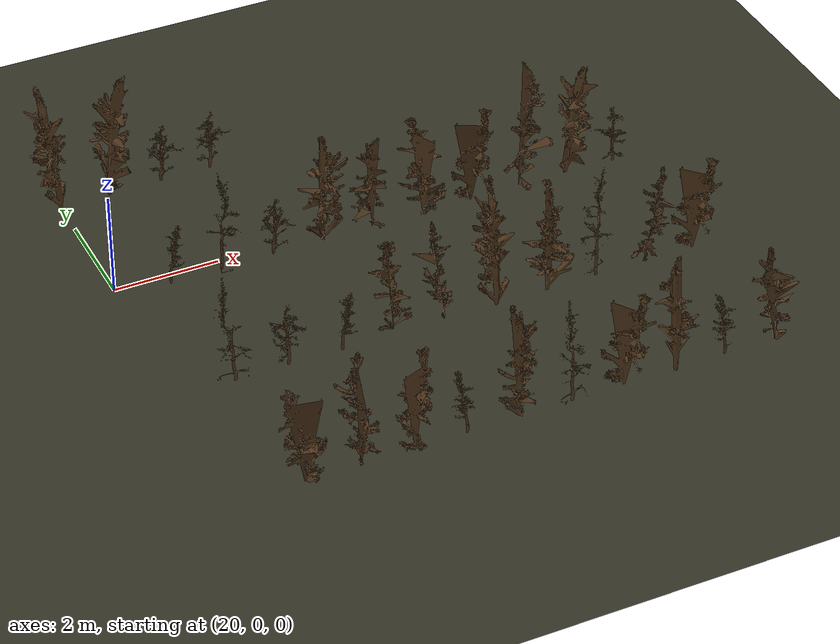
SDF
<sdf version="1.9">
 <world name="orchard_dormant_world">
  <model name="ground_plane">
   <static>true</static>
   <link name="link">
    <collision name="collision">
     <geometry><plane><normal>0 0 1</normal><size>500 500</size></plane></geometry>
    </collision>
    <visual name="visual">
     <geometry><plane><normal>0 0 1</normal><size>500 500</size></plane></geometry>
     <material><ambient>0.2 0.2 0.15 1</ambient><diffuse>0.2 0.2 0.15 1</diffuse></material>
    </visual>
   </link>
  </model>
  <model name="tree246">
   <static>true</static>
   <pose>23.000 2.800 -0.1 0 0 5.252</pose>
   <link name="link">
    <collision name="collision">
     <geometry>
      <mesh>
       <uri>file:///home/administrator/ros2/orchard_navigation_rl_ws/src/orchard_worlds/models/orchard_model/tree14_collision.stl</uri>
      </mesh>
     </geometry>
    </collision>
    <visual name="visual">
     <geometry>
      <mesh>
       <uri>file:///home/administrator/ros2/orchard_navigation_rl_ws/src/orchard_worlds/models/orchard_model/tree14.stl</uri>
      </mesh>
     </geometry>
     <material><ambient>0.3 0.2 0.1 1</ambient><diffuse>0.3 0.2 0.1 1</diffuse></material>
    </visual>
   </link>
  </model>
  <model name="tree247">
   <static>true</static>
   <pose>22.000 2.800 -0.1 0 0 4.802</pose>
   <link name="link">
    <collision name="collision">
     <geometry>
      <mesh>
       <uri>file:///home/administrator/ros2/orchard_navigation_rl_ws/src/orchard_worlds/models/orchard_model/tree14_collision.stl</uri>
      </mesh>
     </geometry>
    </collision>
    <visual name="visual">
     <geometry>
      <mesh>
       <uri>file:///home/administrator/ros2/orchard_navigation_rl_ws/src/orchard_worlds/models/orchard_model/tree14.stl</uri>
      </mesh>
     </geometry>
     <material><ambient>0.3 0.2 0.1 1</ambient><diffuse>0.3 0.2 0.1 1</diffuse></material>
    </visual>
   </link>
  </model>
  <model name="tree248">
   <static>true</static>
   <pose>21.000 2.800 -0.1 0 0 2.596</pose>
   <link name="link">
    <collision name="collision">
     <geometry>
      <mesh>
       <uri>file:///home/administrator/ros2/orchard_navigation_rl_ws/src/orchard_worlds/models/orchard_model/tree7_collision.stl</uri>
      </mesh>
     </geometry>
    </collision>
    <visual name="visual">
     <geometry>
      <mesh>
       <uri>file:///home/administrator/ros2/orchard_navigation_rl_ws/src/orchard_worlds/models/orchard_model/tree7.stl</uri>
      </mesh>
     </geometry>
     <material><ambient>0.3 0.2 0.1 1</ambient><diffuse>0.3 0.2 0.1 1</diffuse></material>
    </visual>
   </link>
  </model>
  <model name="tree249">
   <static>true</static>
   <pose>20.000 2.800 -0.1 0 0 4.828</pose>
   <link name="link">
    <collision name="collision">
     <geometry>
      <mesh>
       <uri>file:///home/administrator/ros2/orchard_navigation_rl_ws/src/orchard_worlds/models/orchard_model/tree7_collision.stl</uri>
      </mesh>
     </geometry>
    </collision>
    <visual name="visual">
     <geometry>
      <mesh>
       <uri>file:///home/administrator/ros2/orchard_navigation_rl_ws/src/orchard_worlds/models/orchard_model/tree7.stl</uri>
      </mesh>
     </geometry>
     <material><ambient>0.3 0.2 0.1 1</ambient><diffuse>0.3 0.2 0.1 1</diffuse></material>
    </visual>
   </link>
  </model>
  <model name="tree267">
   <static>true</static>
   <pose>30.000 -0.200 -0.1 0 0 1.814</pose>
   <link name="link">
    <collision name="collision">
     <geometry>
      <mesh>
       <uri>file:///home/administrator/ros2/orchard_navigation_rl_ws/src/orchard_worlds/models/orchard_model/tree14_collision.stl</uri>
      </mesh>
     </geometry>
    </collision>
    <visual name="visual">
     <geometry>
      <mesh>
       <uri>file:///home/administrator/ros2/orchard_navigation_rl_ws/src/orchard_worlds/models/orchard_model/tree14.stl</uri>
      </mesh>
     </geometry>
     <material><ambient>0.3 0.2 0.1 1</ambient><diffuse>0.3 0.2 0.1 1</diffuse></material>
    </visual>
   </link>
  </model>
  <model name="tree268">
   <static>true</static>
   <pose>29.000 -0.200 -0.1 0 0 1.532</pose>
   <link name="link">
    <collision name="collision">
     <geometry>
      <mesh>
       <uri>file:///home/administrator/ros2/orchard_navigation_rl_ws/src/orchard_worlds/models/orchard_model/tree7_collision.stl</uri>
      </mesh>
     </geometry>
    </collision>
    <visual name="visual">
     <geometry>
      <mesh>
       <uri>file:///home/administrator/ros2/orchard_navigation_rl_ws/src/orchard_worlds/models/orchard_model/tree7.stl</uri>
      </mesh>
     </geometry>
     <material><ambient>0.3 0.2 0.1 1</ambient><diffuse>0.3 0.2 0.1 1</diffuse></material>
    </visual>
   </link>
  </model>
  <model name="tree269">
   <static>true</static>
   <pose>28.000 -0.200 -0.1 0 0 1.834</pose>
   <link name="link">
    <collision name="collision">
     <geometry>
      <mesh>
       <uri>file:///home/administrator/ros2/orchard_navigation_rl_ws/src/orchard_worlds/models/orchard_model/tree3_collision.stl</uri>
      </mesh>
     </geometry>
    </collision>
    <visual name="visual">
     <geometry>
      <mesh>
       <uri>file:///home/administrator/ros2/orchard_navigation_rl_ws/src/orchard_worlds/models/orchard_model/tree3.stl</uri>
      </mesh>
     </geometry>
     <material><ambient>0.3 0.2 0.1 1</ambient><diffuse>0.3 0.2 0.1 1</diffuse></material>
    </visual>
   </link>
  </model>
  <model name="tree270">
   <static>true</static>
   <pose>27.000 -0.200 -0.1 0 0 2.376</pose>
   <link name="link">
    <collision name="collision">
     <geometry>
      <mesh>
       <uri>file:///home/administrator/ros2/orchard_navigation_rl_ws/src/orchard_worlds/models/orchard_model/tree11_collision.stl</uri>
      </mesh>
     </geometry>
    </collision>
    <visual name="visual">
     <geometry>
      <mesh>
       <uri>file:///home/administrator/ros2/orchard_navigation_rl_ws/src/orchard_worlds/models/orchard_model/tree11.stl</uri>
      </mesh>
     </geometry>
     <material><ambient>0.3 0.2 0.1 1</ambient><diffuse>0.3 0.2 0.1 1</diffuse></material>
    </visual>
   </link>
  </model>
  <model name="tree271">
   <static>true</static>
   <pose>26.000 -0.200 -0.1 0 0 4.576</pose>
   <link name="link">
    <collision name="collision">
     <geometry>
      <mesh>
       <uri>file:///home/administrator/ros2/orchard_navigation_rl_ws/src/orchard_worlds/models/orchard_model/tree11_collision.stl</uri>
      </mesh>
     </geometry>
    </collision>
    <visual name="visual">
     <geometry>
      <mesh>
       <uri>file:///home/administrator/ros2/orchard_navigation_rl_ws/src/orchard_worlds/models/orchard_model/tree11.stl</uri>
      </mesh>
     </geometry>
     <material><ambient>0.3 0.2 0.1 1</ambient><diffuse>0.3 0.2 0.1 1</diffuse></material>
    </visual>
   </link>
  </model>
  <model name="tree272">
   <static>true</static>
   <pose>25.000 -0.200 -0.1 0 0 6.066</pose>
   <link name="link">
    <collision name="collision">
     <geometry>
      <mesh>
       <uri>file:///home/administrator/ros2/orchard_navigation_rl_ws/src/orchard_worlds/models/orchard_model/tree1_collision.stl</uri>
      </mesh>
     </geometry>
    </collision>
    <visual name="visual">
     <geometry>
      <mesh>
       <uri>file:///home/administrator/ros2/orchard_navigation_rl_ws/src/orchard_worlds/models/orchard_model/tree1.stl</uri>
      </mesh>
     </geometry>
     <material><ambient>0.3 0.2 0.1 1</ambient><diffuse>0.3 0.2 0.1 1</diffuse></material>
    </visual>
   </link>
  </model>
  <model name="tree273">
   <static>true</static>
   <pose>24.000 -0.200 -0.1 0 0 0.676</pose>
   <link name="link">
    <collision name="collision">
     <geometry>
      <mesh>
       <uri>file:///home/administrator/ros2/orchard_navigation_rl_ws/src/orchard_worlds/models/orchard_model/tree7_collision.stl</uri>
      </mesh>
     </geometry>
    </collision>
    <visual name="visual">
     <geometry>
      <mesh>
       <uri>file:///home/administrator/ros2/orchard_navigation_rl_ws/src/orchard_worlds/models/orchard_model/tree7.stl</uri>
      </mesh>
     </geometry>
     <material><ambient>0.3 0.2 0.1 1</ambient><diffuse>0.3 0.2 0.1 1</diffuse></material>
    </visual>
   </link>
  </model>
  <model name="tree274">
   <static>true</static>
   <pose>23.000 -0.200 -0.1 0 0 4.599</pose>
   <link name="link">
    <collision name="collision">
     <geometry>
      <mesh>
       <uri>file:///home/administrator/ros2/orchard_navigation_rl_ws/src/orchard_worlds/models/orchard_model/tree14_collision.stl</uri>
      </mesh>
     </geometry>
    </collision>
    <visual name="visual">
     <geometry>
      <mesh>
       <uri>file:///home/administrator/ros2/orchard_navigation_rl_ws/src/orchard_worlds/models/orchard_model/tree14.stl</uri>
      </mesh>
     </geometry>
     <material><ambient>0.3 0.2 0.1 1</ambient><diffuse>0.3 0.2 0.1 1</diffuse></material>
    </visual>
   </link>
  </model>
  <model name="tree275">
   <static>true</static>
   <pose>22.000 -0.200 -0.1 0 0 0.384</pose>
   <link name="link">
    <collision name="collision">
     <geometry>
      <mesh>
       <uri>file:///home/administrator/ros2/orchard_navigation_rl_ws/src/orchard_worlds/models/orchard_model/tree9_collision.stl</uri>
      </mesh>
     </geometry>
    </collision>
    <visual name="visual">
     <geometry>
      <mesh>
       <uri>file:///home/administrator/ros2/orchard_navigation_rl_ws/src/orchard_worlds/models/orchard_model/tree9.stl</uri>
      </mesh>
     </geometry>
     <material><ambient>0.3 0.2 0.1 1</ambient><diffuse>0.3 0.2 0.1 1</diffuse></material>
    </visual>
   </link>
  </model>
  <model name="tree276">
   <static>true</static>
   <pose>21.000 -0.200 -0.1 0 0 2.003</pose>
   <link name="link">
    <collision name="collision">
     <geometry>
      <mesh>
       <uri>file:///home/administrator/ros2/orchard_navigation_rl_ws/src/orchard_worlds/models/orchard_model/tree4_collision.stl</uri>
      </mesh>
     </geometry>
    </collision>
    <visual name="visual">
     <geometry>
      <mesh>
       <uri>file:///home/administrator/ros2/orchard_navigation_rl_ws/src/orchard_worlds/models/orchard_model/tree4.stl</uri>
      </mesh>
     </geometry>
     <material><ambient>0.3 0.2 0.1 1</ambient><diffuse>0.3 0.2 0.1 1</diffuse></material>
    </visual>
   </link>
  </model>
  <model name="tree295">
   <static>true</static>
   <pose>30.000 -3.250 -0.1 0 0 2.032</pose>
   <link name="link">
    <collision name="collision">
     <geometry>
      <mesh>
       <uri>file:///home/administrator/ros2/orchard_navigation_rl_ws/src/orchard_worlds/models/orchard_model/tree11_collision.stl</uri>
      </mesh>
     </geometry>
    </collision>
    <visual name="visual">
     <geometry>
      <mesh>
       <uri>file:///home/administrator/ros2/orchard_navigation_rl_ws/src/orchard_worlds/models/orchard_model/tree11.stl</uri>
      </mesh>
     </geometry>
     <material><ambient>0.3 0.2 0.1 1</ambient><diffuse>0.3 0.2 0.1 1</diffuse></material>
    </visual>
   </link>
  </model>
  <model name="tree296">
   <static>true</static>
   <pose>29.000 -3.250 -0.1 0 0 1.495</pose>
   <link name="link">
    <collision name="collision">
     <geometry>
      <mesh>
       <uri>file:///home/administrator/ros2/orchard_navigation_rl_ws/src/orchard_worlds/models/orchard_model/tree2_collision.stl</uri>
      </mesh>
     </geometry>
    </collision>
    <visual name="visual">
     <geometry>
      <mesh>
       <uri>file:///home/administrator/ros2/orchard_navigation_rl_ws/src/orchard_worlds/models/orchard_model/tree2.stl</uri>
      </mesh>
     </geometry>
     <material><ambient>0.3 0.2 0.1 1</ambient><diffuse>0.3 0.2 0.1 1</diffuse></material>
    </visual>
   </link>
  </model>
  <model name="tree297">
   <static>true</static>
   <pose>28.000 -3.250 -0.1 0 0 2.977</pose>
   <link name="link">
    <collision name="collision">
     <geometry>
      <mesh>
       <uri>file:///home/administrator/ros2/orchard_navigation_rl_ws/src/orchard_worlds/models/orchard_model/tree9_collision.stl</uri>
      </mesh>
     </geometry>
    </collision>
    <visual name="visual">
     <geometry>
      <mesh>
       <uri>file:///home/administrator/ros2/orchard_navigation_rl_ws/src/orchard_worlds/models/orchard_model/tree9.stl</uri>
      </mesh>
     </geometry>
     <material><ambient>0.3 0.2 0.1 1</ambient><diffuse>0.3 0.2 0.1 1</diffuse></material>
    </visual>
   </link>
  </model>
  <model name="tree298">
   <static>true</static>
   <pose>27.000 -3.250 -0.1 0 0 3.870</pose>
   <link name="link">
    <collision name="collision">
     <geometry>
      <mesh>
       <uri>file:///home/administrator/ros2/orchard_navigation_rl_ws/src/orchard_worlds/models/orchard_model/tree12_collision.stl</uri>
      </mesh>
     </geometry>
    </collision>
    <visual name="visual">
     <geometry>
      <mesh>
       <uri>file:///home/administrator/ros2/orchard_navigation_rl_ws/src/orchard_worlds/models/orchard_model/tree12.stl</uri>
      </mesh>
     </geometry>
     <material><ambient>0.3 0.2 0.1 1</ambient><diffuse>0.3 0.2 0.1 1</diffuse></material>
    </visual>
   </link>
  </model>
  <model name="tree299">
   <static>true</static>
   <pose>26.000 -3.250 -0.1 0 0 4.251</pose>
   <link name="link">
    <collision name="collision">
     <geometry>
      <mesh>
       <uri>file:///home/administrator/ros2/orchard_navigation_rl_ws/src/orchard_worlds/models/orchard_model/tree7_collision.stl</uri>
      </mesh>
     </geometry>
    </collision>
    <visual name="visual">
     <geometry>
      <mesh>
       <uri>file:///home/administrator/ros2/orchard_navigation_rl_ws/src/orchard_worlds/models/orchard_model/tree7.stl</uri>
      </mesh>
     </geometry>
     <material><ambient>0.3 0.2 0.1 1</ambient><diffuse>0.3 0.2 0.1 1</diffuse></material>
    </visual>
   </link>
  </model>
  <model name="tree300">
   <static>true</static>
   <pose>25.000 -3.250 -0.1 0 0 5.047</pose>
   <link name="link">
    <collision name="collision">
     <geometry>
      <mesh>
       <uri>file:///home/administrator/ros2/orchard_navigation_rl_ws/src/orchard_worlds/models/orchard_model/tree2_collision.stl</uri>
      </mesh>
     </geometry>
    </collision>
    <visual name="visual">
     <geometry>
      <mesh>
       <uri>file:///home/administrator/ros2/orchard_navigation_rl_ws/src/orchard_worlds/models/orchard_model/tree2.stl</uri>
      </mesh>
     </geometry>
     <material><ambient>0.3 0.2 0.1 1</ambient><diffuse>0.3 0.2 0.1 1</diffuse></material>
    </visual>
   </link>
  </model>
  <model name="tree301">
   <static>true</static>
   <pose>24.000 -3.250 -0.1 0 0 4.027</pose>
   <link name="link">
    <collision name="collision">
     <geometry>
      <mesh>
       <uri>file:///home/administrator/ros2/orchard_navigation_rl_ws/src/orchard_worlds/models/orchard_model/tree1_collision.stl</uri>
      </mesh>
     </geometry>
    </collision>
    <visual name="visual">
     <geometry>
      <mesh>
       <uri>file:///home/administrator/ros2/orchard_navigation_rl_ws/src/orchard_worlds/models/orchard_model/tree1.stl</uri>
      </mesh>
     </geometry>
     <material><ambient>0.3 0.2 0.1 1</ambient><diffuse>0.3 0.2 0.1 1</diffuse></material>
    </visual>
   </link>
  </model>
  <model name="tree302">
   <static>true</static>
   <pose>23.000 -3.250 -0.1 0 0 1.759</pose>
   <link name="link">
    <collision name="collision">
     <geometry>
      <mesh>
       <uri>file:///home/administrator/ros2/orchard_navigation_rl_ws/src/orchard_worlds/models/orchard_model/tree4_collision.stl</uri>
      </mesh>
     </geometry>
    </collision>
    <visual name="visual">
     <geometry>
      <mesh>
       <uri>file:///home/administrator/ros2/orchard_navigation_rl_ws/src/orchard_worlds/models/orchard_model/tree4.stl</uri>
      </mesh>
     </geometry>
     <material><ambient>0.3 0.2 0.1 1</ambient><diffuse>0.3 0.2 0.1 1</diffuse></material>
    </visual>
   </link>
  </model>
  <model name="tree303">
   <static>true</static>
   <pose>22.000 -3.250 -0.1 0 0 6.168</pose>
   <link name="link">
    <collision name="collision">
     <geometry>
      <mesh>
       <uri>file:///home/administrator/ros2/orchard_navigation_rl_ws/src/orchard_worlds/models/orchard_model/tree14_collision.stl</uri>
      </mesh>
     </geometry>
    </collision>
    <visual name="visual">
     <geometry>
      <mesh>
       <uri>file:///home/administrator/ros2/orchard_navigation_rl_ws/src/orchard_worlds/models/orchard_model/tree14.stl</uri>
      </mesh>
     </geometry>
     <material><ambient>0.3 0.2 0.1 1</ambient><diffuse>0.3 0.2 0.1 1</diffuse></material>
    </visual>
   </link>
  </model>
  <model name="tree304">
   <static>true</static>
   <pose>21.000 -3.250 -0.1 0 0 5.284</pose>
   <link name="link">
    <collision name="collision">
     <geometry>
      <mesh>
       <uri>file:///home/administrator/ros2/orchard_navigation_rl_ws/src/orchard_worlds/models/orchard_model/tree9_collision.stl</uri>
      </mesh>
     </geometry>
    </collision>
    <visual name="visual">
     <geometry>
      <mesh>
       <uri>file:///home/administrator/ros2/orchard_navigation_rl_ws/src/orchard_worlds/models/orchard_model/tree9.stl</uri>
      </mesh>
     </geometry>
     <material><ambient>0.3 0.2 0.1 1</ambient><diffuse>0.3 0.2 0.1 1</diffuse></material>
    </visual>
   </link>
  </model>
  <model name="tree323">
   <static>true</static>
   <pose>30.000 -6.200 -0.1 0 0 5.204</pose>
   <link name="link">
    <collision name="collision">
     <geometry>
      <mesh>
       <uri>file:///home/administrator/ros2/orchard_navigation_rl_ws/src/orchard_worlds/models/orchard_model/tree8_collision.stl</uri>
      </mesh>
     </geometry>
    </collision>
    <visual name="visual">
     <geometry>
      <mesh>
       <uri>file:///home/administrator/ros2/orchard_navigation_rl_ws/src/orchard_worlds/models/orchard_model/tree8.stl</uri>
      </mesh>
     </geometry>
     <material><ambient>0.3 0.2 0.1 1</ambient><diffuse>0.3 0.2 0.1 1</diffuse></material>
    </visual>
   </link>
  </model>
  <model name="tree324">
   <static>true</static>
   <pose>29.000 -6.200 -0.1 0 0 5.861</pose>
   <link name="link">
    <collision name="collision">
     <geometry>
      <mesh>
       <uri>file:///home/administrator/ros2/orchard_navigation_rl_ws/src/orchard_worlds/models/orchard_model/tree4_collision.stl</uri>
      </mesh>
     </geometry>
    </collision>
    <visual name="visual">
     <geometry>
      <mesh>
       <uri>file:///home/administrator/ros2/orchard_navigation_rl_ws/src/orchard_worlds/models/orchard_model/tree4.stl</uri>
      </mesh>
     </geometry>
     <material><ambient>0.3 0.2 0.1 1</ambient><diffuse>0.3 0.2 0.1 1</diffuse></material>
    </visual>
   </link>
  </model>
  <model name="tree325">
   <static>true</static>
   <pose>28.000 -6.200 -0.1 0 0 4.565</pose>
   <link name="link">
    <collision name="collision">
     <geometry>
      <mesh>
       <uri>file:///home/administrator/ros2/orchard_navigation_rl_ws/src/orchard_worlds/models/orchard_model/tree15_collision.stl</uri>
      </mesh>
     </geometry>
    </collision>
    <visual name="visual">
     <geometry>
      <mesh>
       <uri>file:///home/administrator/ros2/orchard_navigation_rl_ws/src/orchard_worlds/models/orchard_model/tree15.stl</uri>
      </mesh>
     </geometry>
     <material><ambient>0.3 0.2 0.1 1</ambient><diffuse>0.3 0.2 0.1 1</diffuse></material>
    </visual>
   </link>
  </model>
  <model name="tree326">
   <static>true</static>
   <pose>27.000 -6.200 -0.1 0 0 1.863</pose>
   <link name="link">
    <collision name="collision">
     <geometry>
      <mesh>
       <uri>file:///home/administrator/ros2/orchard_navigation_rl_ws/src/orchard_worlds/models/orchard_model/tree11_collision.stl</uri>
      </mesh>
     </geometry>
    </collision>
    <visual name="visual">
     <geometry>
      <mesh>
       <uri>file:///home/administrator/ros2/orchard_navigation_rl_ws/src/orchard_worlds/models/orchard_model/tree11.stl</uri>
      </mesh>
     </geometry>
     <material><ambient>0.3 0.2 0.1 1</ambient><diffuse>0.3 0.2 0.1 1</diffuse></material>
    </visual>
   </link>
  </model>
  <model name="tree327">
   <static>true</static>
   <pose>26.000 -6.200 -0.1 0 0 5.737</pose>
   <link name="link">
    <collision name="collision">
     <geometry>
      <mesh>
       <uri>file:///home/administrator/ros2/orchard_navigation_rl_ws/src/orchard_worlds/models/orchard_model/tree9_collision.stl</uri>
      </mesh>
     </geometry>
    </collision>
    <visual name="visual">
     <geometry>
      <mesh>
       <uri>file:///home/administrator/ros2/orchard_navigation_rl_ws/src/orchard_worlds/models/orchard_model/tree9.stl</uri>
      </mesh>
     </geometry>
     <material><ambient>0.3 0.2 0.1 1</ambient><diffuse>0.3 0.2 0.1 1</diffuse></material>
    </visual>
   </link>
  </model>
  <model name="tree328">
   <static>true</static>
   <pose>25.000 -6.200 -0.1 0 0 5.600</pose>
   <link name="link">
    <collision name="collision">
     <geometry>
      <mesh>
       <uri>file:///home/administrator/ros2/orchard_navigation_rl_ws/src/orchard_worlds/models/orchard_model/tree5_collision.stl</uri>
      </mesh>
     </geometry>
    </collision>
    <visual name="visual">
     <geometry>
      <mesh>
       <uri>file:///home/administrator/ros2/orchard_navigation_rl_ws/src/orchard_worlds/models/orchard_model/tree5.stl</uri>
      </mesh>
     </geometry>
     <material><ambient>0.3 0.2 0.1 1</ambient><diffuse>0.3 0.2 0.1 1</diffuse></material>
    </visual>
   </link>
  </model>
  <model name="tree329">
   <static>true</static>
   <pose>24.000 -6.200 -0.1 0 0 5.613</pose>
   <link name="link">
    <collision name="collision">
     <geometry>
      <mesh>
       <uri>file:///home/administrator/ros2/orchard_navigation_rl_ws/src/orchard_worlds/models/orchard_model/tree4_collision.stl</uri>
      </mesh>
     </geometry>
    </collision>
    <visual name="visual">
     <geometry>
      <mesh>
       <uri>file:///home/administrator/ros2/orchard_navigation_rl_ws/src/orchard_worlds/models/orchard_model/tree4.stl</uri>
      </mesh>
     </geometry>
     <material><ambient>0.3 0.2 0.1 1</ambient><diffuse>0.3 0.2 0.1 1</diffuse></material>
    </visual>
   </link>
  </model>
  <model name="tree330">
   <static>true</static>
   <pose>23.000 -6.200 -0.1 0 0 3.143</pose>
   <link name="link">
    <collision name="collision">
     <geometry>
      <mesh>
       <uri>file:///home/administrator/ros2/orchard_navigation_rl_ws/src/orchard_worlds/models/orchard_model/tree11_collision.stl</uri>
      </mesh>
     </geometry>
    </collision>
    <visual name="visual">
     <geometry>
      <mesh>
       <uri>file:///home/administrator/ros2/orchard_navigation_rl_ws/src/orchard_worlds/models/orchard_model/tree11.stl</uri>
      </mesh>
     </geometry>
     <material><ambient>0.3 0.2 0.1 1</ambient><diffuse>0.3 0.2 0.1 1</diffuse></material>
    </visual>
   </link>
  </model>
  <model name="tree331">
   <static>true</static>
   <pose>22.000 -6.200 -0.1 0 0 3.794</pose>
   <link name="link">
    <collision name="collision">
     <geometry>
      <mesh>
       <uri>file:///home/administrator/ros2/orchard_navigation_rl_ws/src/orchard_worlds/models/orchard_model/tree10_collision.stl</uri>
      </mesh>
     </geometry>
    </collision>
    <visual name="visual">
     <geometry>
      <mesh>
       <uri>file:///home/administrator/ros2/orchard_navigation_rl_ws/src/orchard_worlds/models/orchard_model/tree10.stl</uri>
      </mesh>
     </geometry>
     <material><ambient>0.3 0.2 0.1 1</ambient><diffuse>0.3 0.2 0.1 1</diffuse></material>
    </visual>
   </link>
  </model>
  <model name="tree332">
   <static>true</static>
   <pose>21.000 -6.200 -0.1 0 0 5.497</pose>
   <link name="link">
    <collision name="collision">
     <geometry>
      <mesh>
       <uri>file:///home/administrator/ros2/orchard_navigation_rl_ws/src/orchard_worlds/models/orchard_model/tree11_collision.stl</uri>
      </mesh>
     </geometry>
    </collision>
    <visual name="visual">
     <geometry>
      <mesh>
       <uri>file:///home/administrator/ros2/orchard_navigation_rl_ws/src/orchard_worlds/models/orchard_model/tree11.stl</uri>
      </mesh>
     </geometry>
     <material><ambient>0.3 0.2 0.1 1</ambient><diffuse>0.3 0.2 0.1 1</diffuse></material>
    </visual>
   </link>
  </model>
 </world>
</sdf>
